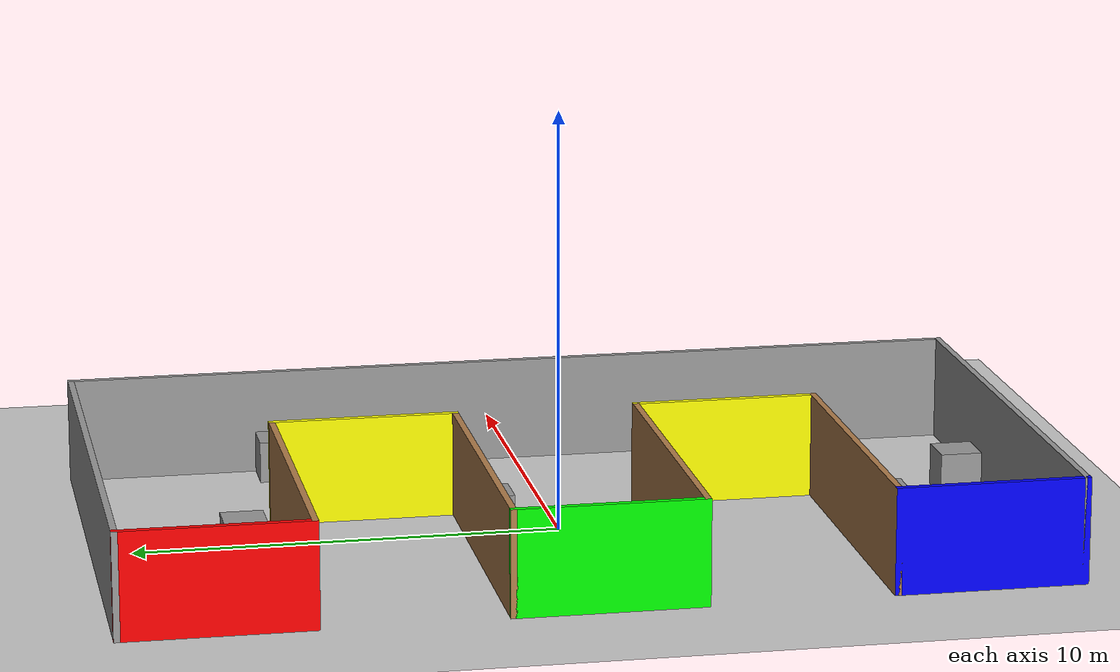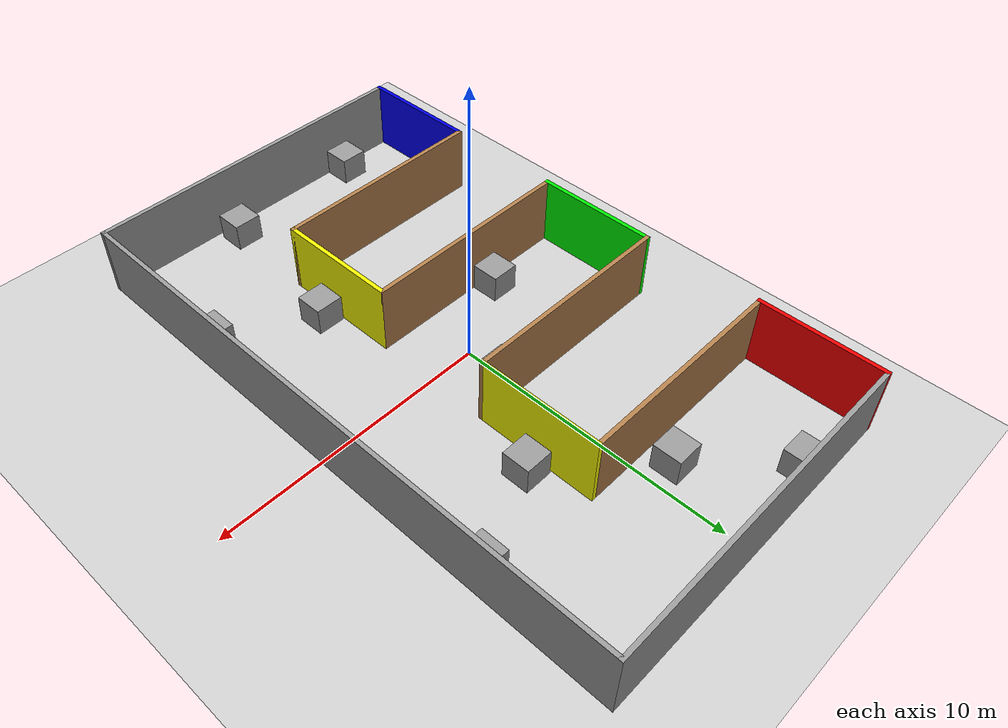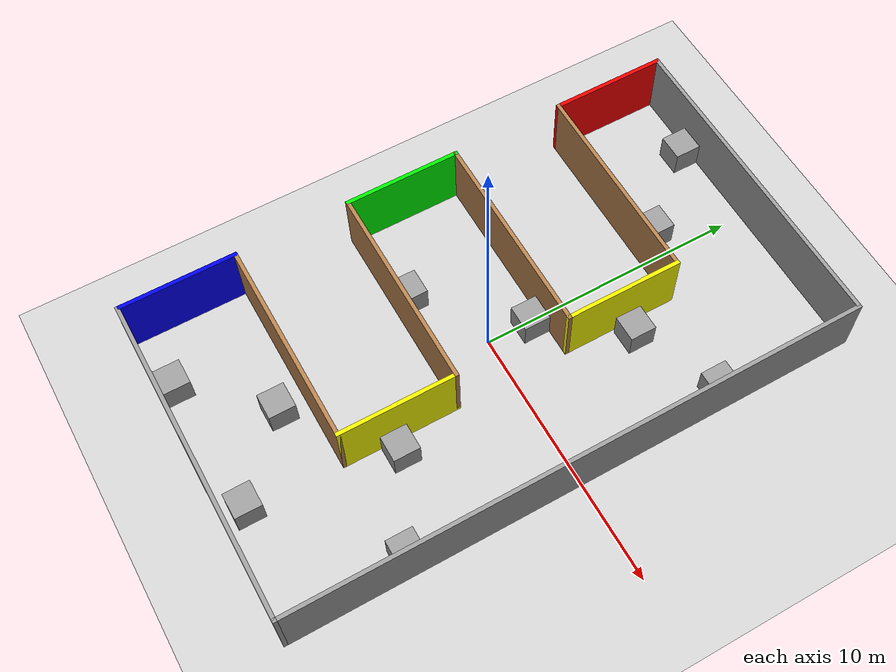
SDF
<sdf version="1.6">
 <world name="default">
  <scene><ambient>0.5 0.5 0.5 1</ambient><background>0.5 0.5 0.5 1</background><shadows>0</shadows></scene>
  <physics name="default_physics" default="0" type="ode">
   <ode>
    <solver>
     <type>quick</type>
     <iters>10</iters>
     <sor>1.3</sor>
     <use_dynamic_moi_rescaling>0</use_dynamic_moi_rescaling>
    </solver>
    <constraints>
     <cfm>0</cfm>
     <erp>0.2</erp>
     <contact_max_correcting_vel>100</contact_max_correcting_vel>
     <contact_surface_layer>0.001</contact_surface_layer>
    </constraints>
   </ode>
   <real_time_update_rate>1000</real_time_update_rate>
   <max_step_size>0.001</max_step_size>
   <real_time_factor>1</real_time_factor>
  </physics>
  <light name="directional_light_1" type="directional">
   <cast_shadows>0</cast_shadows>
   <pose>0 0 30 0.1 0.1 0</pose>
   <diffuse>1 1 1 1</diffuse>
   <specular>0.1 0.1 0.1 1</specular>
   <attenuation><range>300</range></attenuation>
   <direction>0.1 0.1 -1</direction>
  </light>
  <model name="ground_plane">
   <static>1</static>
   <link name="link">
    <collision name="collision">
     <geometry><plane><normal>0 0 1</normal><size>100 100</size></plane></geometry>
     <surface><friction><ode><mu>100</mu><mu2>50</mu2></ode></friction></surface>
    </collision>
    <visual name="visual">
     <cast_shadows>0</cast_shadows>
     <geometry><plane><normal>0 0 1</normal><size>100 100</size></plane></geometry>
     <material>
      <script><uri>file://media/materials/scripts/gazebo.material</uri><name>Gazebo/Grey</name></script>
     </material>
    </visual>
   </link>
  </model>
  <model name="e_map">
   <pose>0 0 0 0 0 -1.5708</pose>
   <link name="Wall_1">
    <collision name="Wall_1_Collision">
     <geometry><box><size>4.5 0.15 2.5</size></box></geometry>
     <pose>0 0 1.25 0 -0 0</pose>
    </collision>
    <visual name="Wall_1_Visual">
     <pose>0 0 1.25 0 -0 0</pose>
     <geometry><box><size>4.5 0.15 2.5</size></box></geometry>
     <material>
      <script><uri>file://media/materials/scripts/gazebo.material</uri><name>Gazebo/Grey</name></script>
      <ambient>0 1 0 1</ambient>
     </material>
    </visual>
    <pose>0 -6.175 0 0 -0 3.14159</pose>
   </link>
   <link name="Wall_12">
    <collision name="Wall_12_Collision">
     <geometry><box><size>8 0.15 2.5</size></box></geometry>
     <pose>0 0 1.25 0 -0 0</pose>
    </collision>
    <visual name="Wall_12_Visual">
     <pose>0 0 1.25 0 -0 0</pose>
     <geometry><box><size>8 0.15 2.5</size></box></geometry>
     <material>
      <script><uri>file://media/materials/scripts/gazebo.material</uri><name>Gazebo/Wood</name></script>
      <ambient>1 1 1 1</ambient>
     </material>
    </visual>
    <pose>-2.175 -2.25 0 0 -0 1.5708</pose>
   </link>
   <link name="Wall_13">
    <collision name="Wall_13_Collision">
     <geometry><box><size>4.5 0.15 2.5</size></box></geometry>
     <pose>0 0 1.25 0 -0 0</pose>
    </collision>
    <visual name="Wall_13_Visual">
     <pose>0 0 1.25 0 -0 0</pose>
     <geometry><box><size>4.5 0.15 2.5</size></box></geometry>
     <material>
      <script><uri>file://media/materials/scripts/gazebo.material</uri><name>Gazebo/Grey</name></script>
      <ambient>1 1 0 1</ambient>
     </material>
    </visual>
    <pose>-4.35 1.675 0 0 -0 3.14159</pose>
   </link>
   <link name="Wall_14">
    <collision name="Wall_14_Collision">
     <geometry><box><size>8 0.15 2.5</size></box></geometry>
     <pose>0 0 1.25 0 -0 0</pose>
    </collision>
    <visual name="Wall_14_Visual">
     <pose>0 0 1.25 0 -0 0</pose>
     <geometry><box><size>8 0.15 2.5</size></box></geometry>
     <material>
      <script><uri>file://media/materials/scripts/gazebo.material</uri><name>Gazebo/Wood</name></script>
      <ambient>1 1 1 1</ambient>
     </material>
    </visual>
    <pose>-6.525 -2.25 0 0 0 -1.5708</pose>
   </link>
   <link name="Wall_16">
    <collision name="Wall_16_Collision">
     <geometry><box><size>4.5 0.15 2.5</size></box></geometry>
     <pose>0 0 1.25 0 -0 0</pose>
    </collision>
    <visual name="Wall_16_Visual">
     <pose>0 0 1.25 0 -0 0</pose>
     <geometry><box><size>4.5 0.15 2.5</size></box></geometry>
     <material>
      <script><uri>file://media/materials/scripts/gazebo.material</uri><name>Gazebo/Grey</name></script>
      <ambient>1 0 0 1</ambient>
     </material>
    </visual>
    <pose>-8.7 -6.175 0 0 -0 3.14159</pose>
   </link>
   <link name="Wall_19">
    <collision name="Wall_19_Collision">
     <geometry><box><size>12.5 0.15 2.5</size></box></geometry>
     <pose>0 0 1.25 0 -0 0</pose>
    </collision>
    <visual name="Wall_19_Visual">
     <pose>0 0 1.25 0 -0 0</pose>
     <geometry><box><size>12.5 0.15 2.5</size></box></geometry>
     <material>
      <script><uri>file://media/materials/scripts/gazebo.material</uri><name>Gazebo/Grey</name></script>
      <ambient>1 1 1 1</ambient>
     </material>
    </visual>
    <pose>-10.875 0 0 0 -0 1.5708</pose>
   </link>
   <link name="Wall_21">
    <collision name="Wall_21_Collision">
     <geometry><box><size>8 0.15 2.5</size></box></geometry>
     <pose>0 0 1.25 0 -0 0</pose>
    </collision>
    <visual name="Wall_21_Visual">
     <pose>0 0 1.25 0 -0 0</pose>
     <geometry><box><size>8 0.15 2.5</size></box></geometry>
     <material>
      <script><uri>file://media/materials/scripts/gazebo.material</uri><name>Gazebo/Wood</name></script>
      <ambient>1 1 1 1</ambient>
     </material>
    </visual>
    <pose>2.175 -2.25 0 0 -0 1.5708</pose>
   </link>
   <link name="Wall_22">
    <collision name="Wall_22_Collision">
     <geometry><box><size>4.5 0.15 2.5</size></box></geometry>
     <pose>0 0 1.25 0 -0 0</pose>
    </collision>
    <visual name="Wall_22_Visual">
     <pose>0 0 1.25 0 -0 0</pose>
     <geometry><box><size>4.5 0.15 2.5</size></box></geometry>
     <material>
      <script><uri>file://media/materials/scripts/gazebo.material</uri><name>Gazebo/Grey</name></script>
      <ambient>1 1 0 1</ambient>
     </material>
    </visual>
    <pose>4.35 1.675 0 0 -0 0</pose>
   </link>
   <link name="Wall_23">
    <collision name="Wall_23_Collision">
     <geometry><box><size>8 0.15 2.5</size></box></geometry>
     <pose>0 0 1.25 0 -0 0</pose>
    </collision>
    <visual name="Wall_23_Visual">
     <pose>0 0 1.25 0 -0 0</pose>
     <geometry><box><size>8 0.15 2.5</size></box></geometry>
     <material>
      <script><uri>file://media/materials/scripts/gazebo.material</uri><name>Gazebo/Wood</name></script>
      <ambient>1 1 1 1</ambient>
     </material>
    </visual>
    <pose>6.525 -2.25 0 0 0 -1.5708</pose>
   </link>
   <link name="Wall_24">
    <collision name="Wall_24_Collision">
     <geometry><box><size>4.5 0.15 2.5</size></box></geometry>
     <pose>0 0 1.25 0 -0 0</pose>
    </collision>
    <visual name="Wall_24_Visual">
     <pose>0 0 1.25 0 -0 0</pose>
     <geometry><box><size>4.5 0.15 2.5</size></box></geometry>
     <material>
      <script><uri>file://media/materials/scripts/gazebo.material</uri><name>Gazebo/Grey</name></script>
      <ambient>0 0 1 1</ambient>
     </material>
    </visual>
    <pose>8.7 -6.175 0 0 -0 0</pose>
   </link>
   <link name="Wall_25">
    <collision name="Wall_25_Collision">
     <geometry><box><size>12.5 0.15 2.5</size></box></geometry>
     <pose>0 0 1.25 0 -0 0</pose>
    </collision>
    <visual name="Wall_25_Visual">
     <pose>0 0 1.25 0 -0 0</pose>
     <geometry><box><size>12.5 0.15 2.5</size></box></geometry>
     <material>
      <script><uri>file://media/materials/scripts/gazebo.material</uri><name>Gazebo/Grey</name></script>
      <ambient>1 1 1 1</ambient>
     </material>
    </visual>
    <pose>10.875 0 0 0 -0 1.5708</pose>
   </link>
   <link name="Wall_26">
    <collision name="Wall_26_Collision">
     <geometry><box><size>21.9 0.15 2.5</size></box></geometry>
     <pose>0 0 1.25 0 -0 0</pose>
    </collision>
    <visual name="Wall_26_Visual">
     <pose>0 0 1.25 0 -0 0</pose>
     <geometry><box><size>21.9 0.15 2.5</size></box></geometry>
     <material>
      <script><uri>file://media/materials/scripts/gazebo.material</uri><name>Gazebo/Grey</name></script>
      <ambient>1 1 1 1</ambient>
     </material>
    </visual>
    <pose>0 6.175 0 0 -0 3.14159</pose>
   </link>
   <static>1</static>
  </model>
  <gravity>0 0 -9.81</gravity>
  <magnetic_field>6e-06 2.3e-05 -4.2e-05</magnetic_field>
  <atmosphere type="adiabatic"/>
  <spherical_coordinates>
   <surface_model>EARTH_WGS84</surface_model>
   <latitude_deg>0</latitude_deg>
   <longitude_deg>0</longitude_deg>
   <elevation>0</elevation>
   <heading_deg>0</heading_deg>
  </spherical_coordinates>
  <model name="unit_box_0">
   <pose>2.33949 4.57536 0.5 -1e-06 0 0</pose>
   <link name="link">
    <inertial>
     <mass>1</mass>
     <inertia>
      <ixx>0.166667</ixx>
      <ixy>0</ixy>
      <ixz>0</ixz>
      <iyy>0.166667</iyy>
      <iyz>0</iyz>
      <izz>0.166667</izz>
     </inertia>
    </inertial>
    <collision name="collision"><geometry><box><size>1 1 1</size></box></geometry></collision>
    <visual name="visual">
     <geometry><box><size>1 1 1</size></box></geometry>
     <material>
      <script><name>Gazebo/Grey</name><uri>file://media/materials/scripts/gazebo.material</uri></script>
     </material>
    </visual>
   </link>
  </model>
  <model name="unit_box_2">
   <pose>2.29058 -4.67534 0.5 1e-06 -0 0</pose>
   <link name="link">
    <inertial>
     <mass>1</mass>
     <inertia>
      <ixx>0.166667</ixx>
      <ixy>0</ixy>
      <ixz>0</ixz>
      <iyy>0.166667</iyy>
      <iyz>0</iyz>
      <izz>0.166667</izz>
     </inertia>
    </inertial>
    <collision name="collision"><geometry><box><size>1 1 1</size></box></geometry></collision>
    <visual name="visual">
     <geometry><box><size>1 1 1</size></box></geometry>
     <material>
      <script><name>Gazebo/Grey</name><uri>file://media/materials/scripts/gazebo.material</uri></script>
     </material>
    </visual>
   </link>
  </model>
  <model name="unit_box_3">
   <pose>5.5691 -6.20691 0.499996 -7e-06 0 0</pose>
   <link name="link">
    <inertial>
     <mass>1</mass>
     <inertia>
      <ixx>0.166667</ixx>
      <ixy>0</ixy>
      <ixz>0</ixz>
      <iyy>0.166667</iyy>
      <iyz>0</iyz>
      <izz>0.166667</izz>
     </inertia>
    </inertial>
    <collision name="collision"><geometry><box><size>1 1 1</size></box></geometry></collision>
    <visual name="visual">
     <geometry><box><size>1 1 1</size></box></geometry>
     <material>
      <script><name>Gazebo/Grey</name><uri>file://media/materials/scripts/gazebo.material</uri></script>
     </material>
    </visual>
   </link>
  </model>
  <model name="unit_box_1_1">
   <pose>-3.7323 -10.2999 0.5 -1e-06 -0 1.4e-05</pose>
   <link name="link">
    <inertial>
     <mass>1</mass>
     <inertia>
      <ixx>0.166667</ixx>
      <ixy>0</ixy>
      <ixz>0</ixz>
      <iyy>0.166667</iyy>
      <iyz>0</iyz>
      <izz>0.166667</izz>
     </inertia>
    </inertial>
    <collision name="collision"><geometry><box><size>1 1 1</size></box></geometry></collision>
    <visual name="visual">
     <geometry><box><size>1 1 1</size></box></geometry>
     <material>
      <script><name>Gazebo/Grey</name><uri>file://media/materials/scripts/gazebo.material</uri></script>
     </material>
    </visual>
   </link>
  </model>
  <model name="unit_box_1_2">
   <pose>5.60003 5.92026 0.5 0 -0 1e-05</pose>
   <link name="link">
    <inertial>
     <mass>1</mass>
     <inertia>
      <ixx>0.166667</ixx>
      <ixy>0</ixy>
      <ixz>0</ixz>
      <iyy>0.166667</iyy>
      <iyz>0</iyz>
      <izz>0.166667</izz>
     </inertia>
    </inertial>
    <collision name="collision"><geometry><box><size>1 1 1</size></box></geometry></collision>
    <visual name="visual">
     <geometry><box><size>1 1 1</size></box></geometry>
     <material>
      <script><name>Gazebo/Grey</name><uri>file://media/materials/scripts/gazebo.material</uri></script>
     </material>
    </visual>
   </link>
  </model>
  <model name="unit_box_1_3">
   <pose>-3.38143 10.3 0.5 0 -1e-06 1e-06</pose>
   <link name="link">
    <inertial>
     <mass>1</mass>
     <inertia>
      <ixx>0.166667</ixx>
      <ixy>0</ixy>
      <ixz>0</ixz>
      <iyy>0.166667</iyy>
      <iyz>0</iyz>
      <izz>0.166667</izz>
     </inertia>
    </inertial>
    <collision name="collision"><geometry><box><size>1 1 1</size></box></geometry></collision>
    <visual name="visual">
     <geometry><box><size>1 1 1</size></box></geometry>
     <material>
      <script><name>Gazebo/Grey</name><uri>file://media/materials/scripts/gazebo.material</uri></script>
     </material>
    </visual>
   </link>
  </model>
  <model name="unit_box_1_4">
   <pose>-2.90229 -1.59983 0.499996 -7e-06 -0 1.4e-05</pose>
   <link name="link">
    <inertial>
     <mass>1</mass>
     <inertia>
      <ixx>0.166667</ixx>
      <ixy>0</ixy>
      <ixz>0</ixz>
      <iyy>0.166667</iyy>
      <iyz>0</iyz>
      <izz>0.166667</izz>
     </inertia>
    </inertial>
    <collision name="collision"><geometry><box><size>1 1 1</size></box></geometry></collision>
    <visual name="visual">
     <geometry><box><size>1 1 1</size></box></geometry>
     <material>
      <script><name>Gazebo/Grey</name><uri>file://media/materials/scripts/gazebo.material</uri></script>
     </material>
    </visual>
   </link>
  </model>
  <model name="unit_box_1_5">
   <pose>0.166429 1.59996 0.499996 7e-06 -0 1.1e-05</pose>
   <link name="link">
    <inertial>
     <mass>1</mass>
     <inertia>
      <ixx>0.166667</ixx>
      <ixy>0</ixy>
      <ixz>0</ixz>
      <iyy>0.166667</iyy>
      <iyz>0</iyz>
      <izz>0.166667</izz>
     </inertia>
    </inertial>
    <collision name="collision"><geometry><box><size>1 1 1</size></box></geometry></collision>
    <visual name="visual">
     <geometry><box><size>1 1 1</size></box></geometry>
     <material>
      <script><name>Gazebo/Grey</name><uri>file://media/materials/scripts/gazebo.material</uri></script>
     </material>
    </visual>
   </link>
  </model>
  <model name="unit_box_1_6">
   <pose>1.53218 -10.0568 0.5 1e-06 -0 0</pose>
   <link name="link">
    <inertial>
     <mass>1</mass>
     <inertia>
      <ixx>0.166667</ixx>
      <ixy>0</ixy>
      <ixz>0</ixz>
      <iyy>0.166667</iyy>
      <iyz>0</iyz>
      <izz>0.166667</izz>
     </inertia>
    </inertial>
    <collision name="collision"><geometry><box><size>1 1 1</size></box></geometry></collision>
    <visual name="visual">
     <geometry><box><size>1 1 1</size></box></geometry>
     <material>
      <script><name>Gazebo/Grey</name><uri>file://media/materials/scripts/gazebo.material</uri></script>
     </material>
    </visual>
   </link>
  </model>
  <model name="unit_box_1_7">
   <pose>-1.15459 -7.57421 0.499996 -7e-06 0 0</pose>
   <link name="link">
    <inertial>
     <mass>1</mass>
     <inertia>
      <ixx>0.166667</ixx>
      <ixy>0</ixy>
      <ixz>0</ixz>
      <iyy>0.166667</iyy>
      <iyz>0</iyz>
      <izz>0.166667</izz>
     </inertia>
    </inertial>
    <collision name="collision"><geometry><box><size>1 1 1</size></box></geometry></collision>
    <visual name="visual">
     <geometry><box><size>1 1 1</size></box></geometry>
     <material>
      <script><name>Gazebo/Grey</name><uri>file://media/materials/scripts/gazebo.material</uri></script>
     </material>
    </visual>
   </link>
  </model>
  <model name="unit_box_1_8">
   <pose>-0.900254 7.50071 0.5 -1e-06 0 0</pose>
   <link name="link">
    <inertial>
     <mass>1</mass>
     <inertia>
      <ixx>0.166667</ixx>
      <ixy>0</ixy>
      <ixz>0</ixz>
      <iyy>0.166667</iyy>
      <iyz>0</iyz>
      <izz>0.166667</izz>
     </inertia>
    </inertial>
    <collision name="collision"><geometry><box><size>1 1 1</size></box></geometry></collision>
    <visual name="visual">
     <geometry><box><size>1 1 1</size></box></geometry>
     <material>
      <script><name>Gazebo/Grey</name><uri>file://media/materials/scripts/gazebo.material</uri></script>
     </material>
    </visual>
   </link>
  </model>
 </world>
</sdf>
